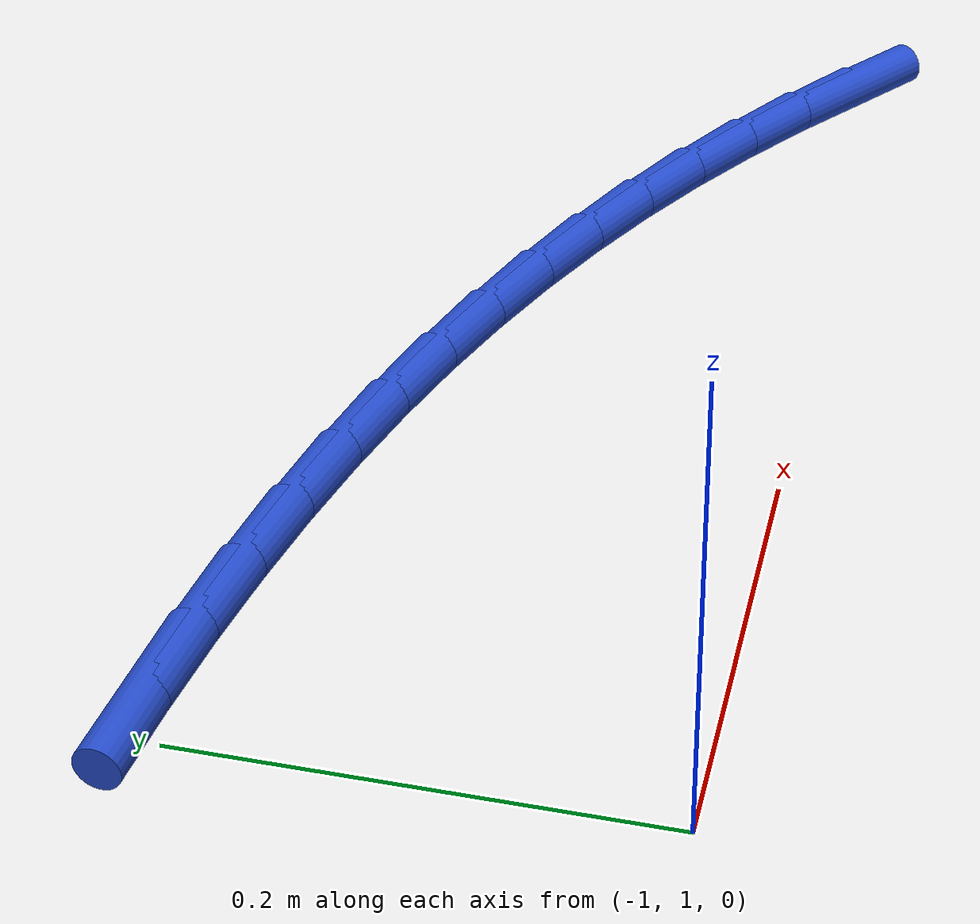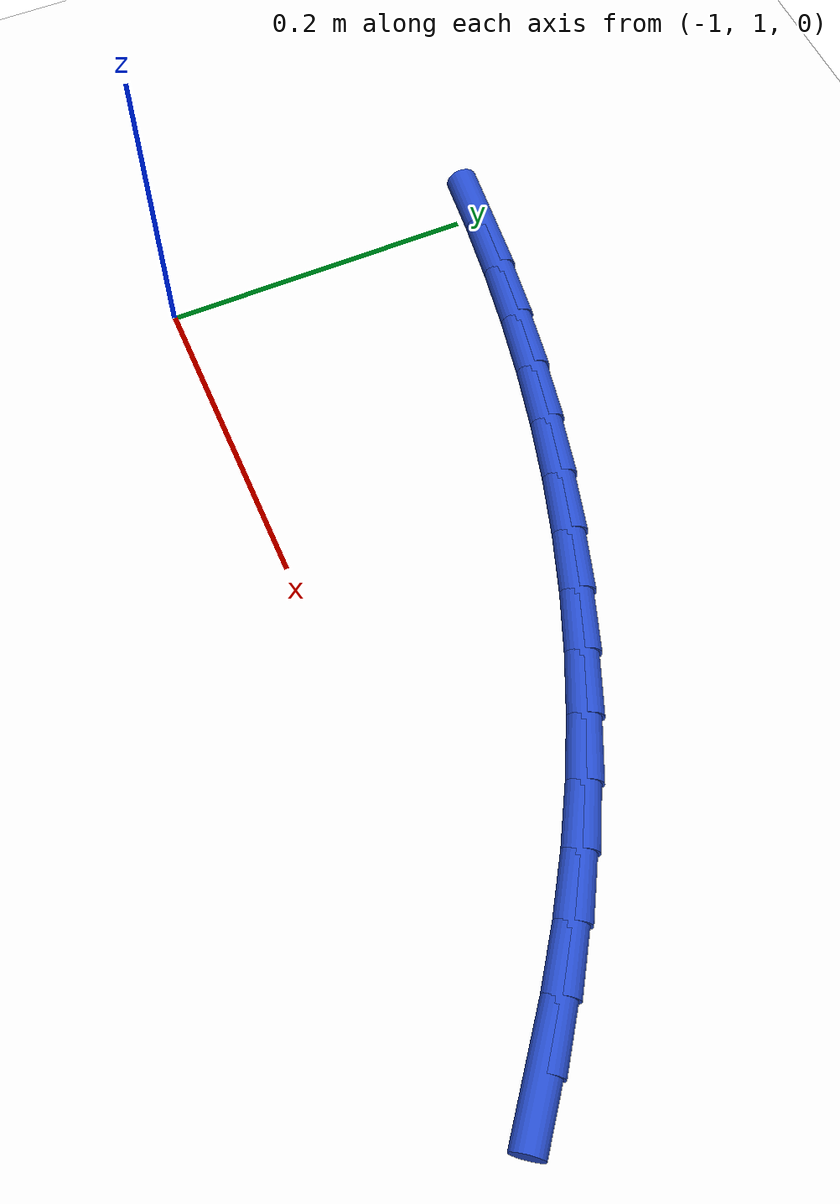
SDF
<sdf version="1.6">
 <world name="default">
  <model name="ground_plane">
   <static>1</static>
   <link name="link">
    <collision name="collision">
     <geometry><plane><normal>0 0 1</normal><size>100 100</size></plane></geometry>
     <surface><friction><ode><mu>100</mu><mu2>50</mu2></ode></friction></surface>
    </collision>
    <visual name="visual">
     <cast_shadows>0</cast_shadows>
     <geometry><plane><normal>0 0 1</normal><size>100 100</size></plane></geometry>
     <material>
      <script><uri>file://media/materials/scripts/gazebo.material</uri><name>Gazebo/WhiteGlow</name></script>
     </material>
    </visual>
   </link>
  </model>
  <model name="line">
   <link name="link_29">
    <pose>-0.47748888471723117 1.0124929468317347 0.01 0 1.57 -0.6509689164352124</pose>
    <collision name="collision">
     <geometry><cylinder><radius>0.01</radius><length>0.08</length></cylinder></geometry>
    </collision>
    <visual name="visual">
     <material>
      <script><name>Gazebo/Blue</name><uri>file://media/materials/scripts/gazebo.material</uri></script>
     </material>
     <geometry><cylinder><radius>0.01</radius><length>0.08</length></cylinder></geometry>
    </visual>
   </link>
   <link name="link_30">
    <pose>-0.5089071327911037 1.0364253068695335 0.01 0 1.57 -0.6076727666682773</pose>
    <collision name="collision">
     <geometry><cylinder><radius>0.01</radius><length>0.08</length></cylinder></geometry>
    </collision>
    <visual name="visual">
     <material>
      <script><name>Gazebo/Blue</name><uri>file://media/materials/scripts/gazebo.material</uri></script>
     </material>
     <geometry><cylinder><radius>0.01</radius><length>0.08</length></cylinder></geometry>
    </visual>
   </link>
   <link name="link_31">
    <pose>-0.5411898397317629 1.0588766519085047 0.01 0 1.57 -0.5625471573862791</pose>
    <collision name="collision">
     <geometry><cylinder><radius>0.01</radius><length>0.08</length></cylinder></geometry>
    </collision>
    <visual name="visual">
     <material>
      <script><name>Gazebo/Blue</name><uri>file://media/materials/scripts/gazebo.material</uri></script>
     </material>
     <geometry><cylinder><radius>0.01</radius><length>0.08</length></cylinder></geometry>
    </visual>
   </link>
   <link name="link_32">
    <pose>-0.574300410848948 1.0797529854000656 0.01 0 1.57 -0.5158658099053233</pose>
    <collision name="collision">
     <geometry><cylinder><radius>0.01</radius><length>0.08</length></cylinder></geometry>
    </collision>
    <visual name="visual">
     <material>
      <script><name>Gazebo/Blue</name><uri>file://media/materials/scripts/gazebo.material</uri></script>
     </material>
     <geometry><cylinder><radius>0.01</radius><length>0.08</length></cylinder></geometry>
    </visual>
   </link>
   <link name="link_33">
    <pose>-0.6082041989019451 1.098979324305914 0.01 0 1.57 -0.46965449911761487</pose>
    <collision name="collision">
     <geometry><cylinder><radius>0.01</radius><length>0.08</length></cylinder></geometry>
    </collision>
    <visual name="visual">
     <material>
      <script><name>Gazebo/Blue</name><uri>file://media/materials/scripts/gazebo.material</uri></script>
     </material>
     <geometry><cylinder><radius>0.01</radius><length>0.08</length></cylinder></geometry>
    </visual>
   </link>
   <link name="link_34">
    <pose>-0.6428763744331981 1.1165765394296092 0.01 0 1.57 -0.4247454569267067</pose>
    <collision name="collision">
     <geometry><cylinder><radius>0.01</radius><length>0.08</length></cylinder></geometry>
    </collision>
    <visual name="visual">
     <material>
      <script><name>Gazebo/Blue</name><uri>file://media/materials/scripts/gazebo.material</uri></script>
     </material>
     <geometry><cylinder><radius>0.01</radius><length>0.08</length></cylinder></geometry>
    </visual>
   </link>
   <link name="link_35">
    <pose>-0.6782951948777229 1.1325956397950916 0.01 0 1.57 -0.381329352784515</pose>
    <collision name="collision">
     <geometry><cylinder><radius>0.01</radius><length>0.08</length></cylinder></geometry>
    </collision>
    <visual name="visual">
     <material>
      <script><name>Gazebo/Blue</name><uri>file://media/materials/scripts/gazebo.material</uri></script>
     </material>
     <geometry><cylinder><radius>0.01</radius><length>0.08</length></cylinder></geometry>
    </visual>
   </link>
   <link name="link_36">
    <pose>-0.7144389187947567 1.1470876454024044 0.01 0 1.57 -0.33956161476217556</pose>
    <collision name="collision">
     <geometry><cylinder><radius>0.01</radius><length>0.08</length></cylinder></geometry>
    </collision>
    <visual name="visual">
     <material>
      <script><name>Gazebo/Blue</name><uri>file://media/materials/scripts/gazebo.material</uri></script>
     </material>
     <geometry><cylinder><radius>0.01</radius><length>0.08</length></cylinder></geometry>
    </visual>
   </link>
   <link name="link_37">
    <pose>-0.7512858047435373 1.1601035762515906 0.01 0 1.57 -0.29956244585359215</pose>
    <collision name="collision">
     <geometry><cylinder><radius>0.01</radius><length>0.08</length></cylinder></geometry>
    </collision>
    <visual name="visual">
     <material>
      <script><name>Gazebo/Blue</name><uri>file://media/materials/scripts/gazebo.material</uri></script>
     </material>
     <geometry><cylinder><radius>0.01</radius><length>0.08</length></cylinder></geometry>
    </visual>
   </link>
   <link name="link_38">
    <pose>-0.7888141112833023 1.1716944523426926 0.01 0 1.57 -0.2614182425018095</pose>
    <collision name="collision">
     <geometry><cylinder><radius>0.01</radius><length>0.08</length></cylinder></geometry>
    </collision>
    <visual name="visual">
     <material>
      <script><name>Gazebo/Blue</name><uri>file://media/materials/scripts/gazebo.material</uri></script>
     </material>
     <geometry><cylinder><radius>0.01</radius><length>0.08</length></cylinder></geometry>
    </visual>
   </link>
   <link name="link_39">
    <pose>-0.8270020969732892 1.1819112936757543 0.01 0 1.57 -0.22518425615902832</pose>
    <collision name="collision">
     <geometry><cylinder><radius>0.01</radius><length>0.08</length></cylinder></geometry>
    </collision>
    <visual name="visual">
     <material>
      <script><name>Gazebo/Blue</name><uri>file://media/materials/scripts/gazebo.material</uri></script>
     </material>
     <geometry><cylinder><radius>0.01</radius><length>0.08</length></cylinder></geometry>
    </visual>
   </link>
   <link name="link_40">
    <pose>-0.865828020372736 1.1908051202508183 0.01 0 1.57 -0.19088808559010412</pose>
    <collision name="collision">
     <geometry><cylinder><radius>0.01</radius><length>0.08</length></cylinder></geometry>
    </collision>
    <visual name="visual">
     <material>
      <script><name>Gazebo/Blue</name><uri>file://media/materials/scripts/gazebo.material</uri></script>
     </material>
     <geometry><cylinder><radius>0.01</radius><length>0.08</length></cylinder></geometry>
    </visual>
   </link>
   <link name="link_41">
    <pose>-0.9052701400408796 1.1984269520679274 0.01 0 1.57 -0.15853361645858974</pose>
    <collision name="collision">
     <geometry><cylinder><radius>0.01</radius><length>0.08</length></cylinder></geometry>
    </collision>
    <visual name="visual">
     <material>
      <script><name>Gazebo/Blue</name><uri>file://media/materials/scripts/gazebo.material</uri></script>
     </material>
     <geometry><cylinder><radius>0.01</radius><length>0.08</length></cylinder></geometry>
    </visual>
   </link>
   <link name="link_42">
    <pose>-0.9453067145369582 1.2048278091271252 0.01 0 1.57 -0.12810508604536114</pose>
    <collision name="collision">
     <geometry><cylinder><radius>0.01</radius><length>0.08</length></cylinder></geometry>
    </collision>
    <visual name="visual">
     <material>
      <script><name>Gazebo/Blue</name><uri>file://media/materials/scripts/gazebo.material</uri></script>
     </material>
     <geometry><cylinder><radius>0.01</radius><length>0.08</length></cylinder></geometry>
    </visual>
   </link>
   <link name="link_43">
    <pose>-0.9859160024202094 1.210058711428454 0.01 0 1.57 -0.0995710268657054</pose>
    <collision name="collision">
     <geometry><cylinder><radius>0.01</radius><length>0.08</length></cylinder></geometry>
    </collision>
    <visual name="visual">
     <material>
      <script><name>Gazebo/Blue</name><uri>file://media/materials/scripts/gazebo.material</uri></script>
     </material>
     <geometry><cylinder><radius>0.01</radius><length>0.08</length></cylinder></geometry>
    </visual>
   </link>
  </model>
 </world>
</sdf>
